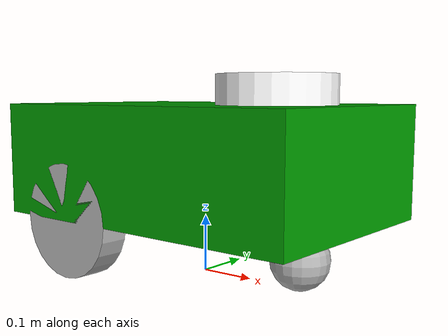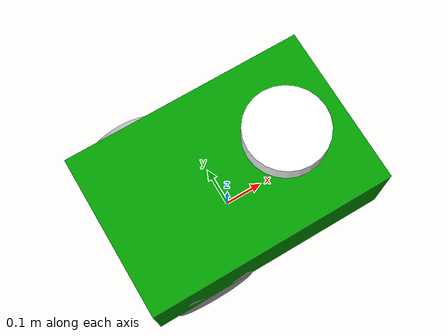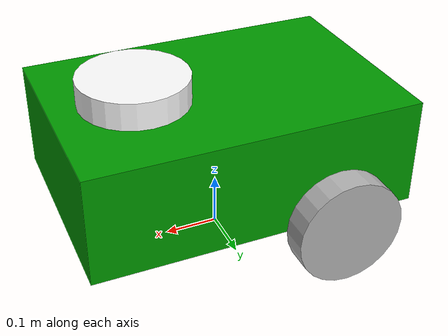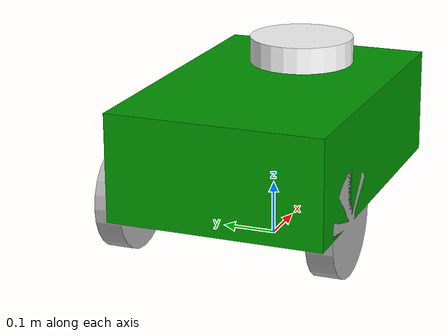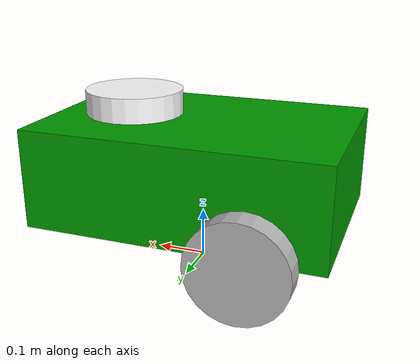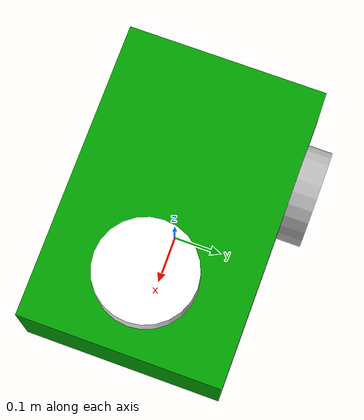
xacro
<?xml version="1.0"?>
<robot name="my_robot" xmlns:xacro="http://www.ros.org/wiki/xacro">
    <xacro:property name="base_length" value="0.6" />
    <xacro:property name="wheel_radius" value="0.1" />
    <xacro:property name="wheel_length" value="0.05" />
    <xacro:property name="base_width" value="0.4" />
    <xacro:property name="base_height" value="0.2" />

    <xacro:macro name="box_inertia" params="mass lx ly lz xyz rpy">
        <inertial>
            <origin xyz="${xyz}" rpy="${rpy}" />
            <mass value="${mass}" />
            <inertia ixx="${(mass / 12.0) * (ly * ly + lz * lz)}" ixy="0" ixz="0"
                     iyy="${(mass / 12.0) * (lx * lx + lz * lz)}" iyz="0"
                     izz="${(mass / 12.0) * (lx * lx + ly * ly)}" />
        </inertial>
    </xacro:macro>

    <xacro:macro name="cylinder_inertia" params="mass h r xyz rpy">
        <inertial>
            <origin xyz="${xyz}" rpy="${rpy}" />
            <mass value="${mass}" />
            <inertia ixx="${(mass / 12.0) * (3 * r * r + h * h)}" ixy="0" ixz="0"
                     iyy="${(mass / 12.0) * (3 * r * r + h * h)}" iyz="0"
                     izz="${0.5 * mass * r * r}" />
        </inertial>
    </xacro:macro>

    <xacro:macro name="sphere_inertia" params="mass r xyz rpy">
        <inertial>
            <origin xyz="${xyz}" rpy="${rpy}" />
            <mass value="${mass}" />
            <inertia ixx="${(2.0 / 5.0) * mass * r * r}" ixy="0" ixz="0"
                     iyy="${(2.0 / 5.0) * mass * r * r}" iyz="0"
                     izz="${(2.0 / 5.0) * mass * r * r}" />
        </inertial>
    </xacro:macro>

    <material name="green">
        <color rgba="0 0.6 0 1"/>
    </material>

    <material name="white">
        <color rgba="1 1 1 1"/>
    </material>

    <material name="gray">
        <color rgba="0.7 0.7 0.7 1"/>
    </material>

    <link name="base_footprint"/>

    <link name="base_link">
        <visual>
            <geometry>
                <box size="${base_length} 0.4 0.2" />
            </geometry>
            <origin xyz="0 0 0.1" rpy="0 0 0"/>
            <material name="green"/>
        </visual>
        <collision>
            <geometry>
                <box size="${base_length} ${base_width} ${base_height}" />
            </geometry>
            <origin xyz="0 0 ${base_height / 2.0}" rpy="0 0 0" />
        </collision>
        <xacro:box_inertia mass="5.0" lx="${base_length}" ly="0.4" lz="0.2" xyz="0 0 0.1" rpy="0 0 0" />
    </link>

    <joint name="base_joint" type="fixed">
        <parent link="base_footprint" />
        <child link="base_link" />
        <origin xyz="0 0 0.1" rpy="0 0 0" />
    </joint>

    <link name="lidar">
        <visual>
            <geometry>
                <cylinder radius="0.1" length="0.05" />
            </geometry>
            <origin xyz="0 0 0" rpy="0 0 0" />
            <material name="white"/>
        </visual>
        <collision>
            <geometry>
                <cylinder radius="0.1" length="0.05" />
            </geometry>
            <origin xyz="0 0 0" rpy="0 0 0" />
        </collision>
        <xacro:cylinder_inertia mass="1.0" h="0.05" r="0.1" xyz="0 0 0" rpy="0 0 0"/>
    </link>

    <joint name="base_lidar_joint" type="fixed">
        <parent link="base_link"/>
        <child link="lidar"/>
        <origin xyz="${base_length / 4.0} 0 0.225" rpy="0 0 0"/>
    </joint>

    <link name="left_wheel">
        <visual>
            <geometry>
                <cylinder radius="0.1" length="0.05" />
            </geometry>
            <origin xyz="0 0 0.025" rpy="0 0 0" />
            <material name="gray"/>
        </visual>
        <collision>
            <geometry>
                <cylinder radius="0.1" length="0.05" />
            </geometry>
            <origin xyz="0 0 0.025" rpy="0 0 0" />
        </collision>
        <xacro:cylinder_inertia mass="1.0" h="0.05" r="0.1" xyz="0 0 0.025" rpy="0 0 0"/>
    </link>

    <joint name="base_left_wheel_joint" type="continuous">
        <parent link="base_link"/>
        <child link="left_wheel"/>
        <origin xyz="${-base_length / 4.0} 0.2 0" rpy="${-pi / 2.0} 0 0"/>
        <axis xyz="0 0 1"/>
    </joint>

    <link name="right_wheel">
        <visual>
            <geometry>
                <cylinder radius="0.1" length="0.05" />
            </geometry>
            <origin xyz="0 0 0.025" rpy="0 0 0" />
            <material name="gray"/>
        </visual>
        <collision>
            <geometry>
                <cylinder radius="0.1" length="0.05" />
            </geometry>
            <origin xyz="0 0 0.025" rpy="0 0 0" />
        </collision>
        <xacro:cylinder_inertia mass="1.0" h="0.05" r="0.1" xyz="0 0 0.025" rpy="0 0 0"/>
    </link>

    <joint name="base_right_wheel_joint" type="continuous">
        <parent link="base_link"/>
        <child link="right_wheel"/>
        <origin xyz="${-base_length / 4.0} -0.2 0" rpy="${-pi / 2.0} 0 0"/>
        <axis xyz="0 0 1"/>
    </joint>

    <link name="caster_wheel">
        <visual>
            <geometry>
                <sphere radius="0.05" />
            </geometry>
            <origin xyz="0 0 0" rpy="0 0 0" />
            <material name="gray" />
        </visual>
        <collision>
            <geometry>
                <sphere radius="0.05" />
            </geometry>
            <origin xyz="0 0 0" rpy="0 0 0" />
        </collision>
        <xacro:sphere_inertia mass="2.0" r="0.05" xyz="0 0 0" rpy="0 0 0"/>
    </link>

    <joint name="base_caster_wheel_joint" type="fixed">
        <parent link="base_link" />
        <child link="caster_wheel"/>
        <origin xyz="0.2 0 -0.05" rpy="0 0 0" />
    </joint>

    <gazebo reference="base_link">
        <material>Gazebo/Green</material>
    </gazebo>

    <gazebo reference="caster_wheel">
        <material>Gazebo/Grey</material>
    </gazebo>

    <gazebo reference="left_wheel">
        <material>Gazebo/Grey</material>
    </gazebo>

    <gazebo reference="right_wheel">
        <material>Gazebo/Grey</material>
    </gazebo>

    <gazebo reference="lidar">
        <material>Gazebo/White</material>
    </gazebo>

    <gazebo>
        <plugin name="diff_drive_controller" filename="libgazebo_ros_diff_drive.so">
            <update_rate>50</update_rate>
            <left_joint>base_left_wheel_joint</left_joint>
            <right_joint>base_right_wheel_joint</right_joint>
            <wheel_separation>0.4</wheel_separation>
            <wheel_diameter>0.2</wheel_diameter>
            <publish_odom>true</publish_odom>
            <publish_odom_tf>true</publish_odom_tf>
            <publish_wheel_tf>true</publish_wheel_tf>
            <odometry_topic>odom</odometry_topic>
            <odometry_frame>odom</odometry_frame>
            <robot_base_frame>base_footprint</robot_base_frame>
            <command_topic>cmd_vel</command_topic>
        </plugin>
    </gazebo>
</robot>
